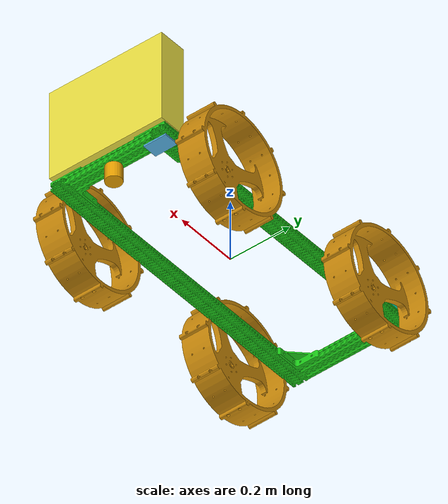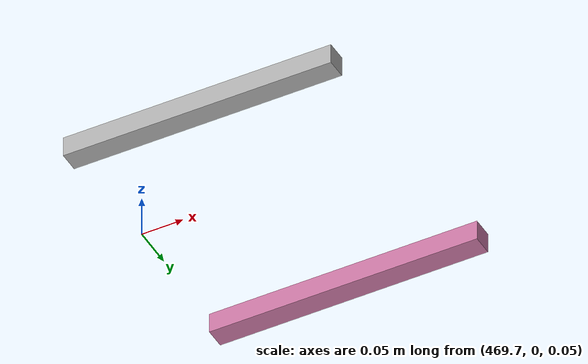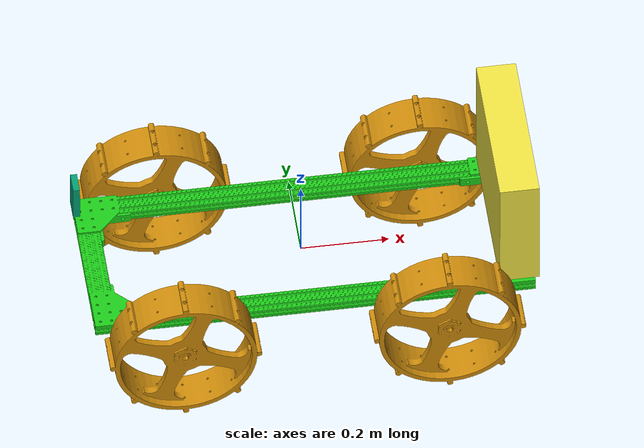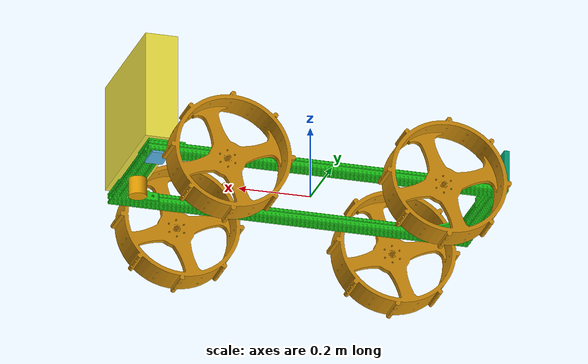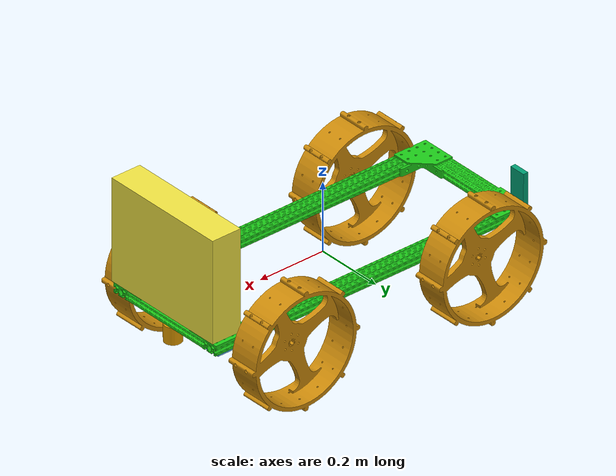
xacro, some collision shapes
<?xml version="1.0"?>
<robot xmlns:xacro="http://www.ros.org/wiki/xacro" name="moony">
<!-- note: units are meters, kilograms, and radians -->

<!-- THIS PLUGIN NEEDS TO BE FIRST -->

<!-- CONSTANTS -->
<xacro:property name="base_mass" value="4.11" />
<xacro:property name="base_height" value=".03" />

<!-- LINKS -->
    <link name="base_footprint" /> <!-- dummy prevents laser from publishing -->

    <joint name="base_joint" type="fixed">
     <origin xyz="0 0 0.01" rpy="0 0 0" />
     <parent link="base_footprint"/>
     <child link="base_link"/>
   </joint>

    <link name="base_link">
        <inertial>
            <origin rpy="0 0 0" xyz="0 0 0"/>
            <mass value="${base_mass}" />
            <inertia ixx="0.1" ixy="0" ixz="0" iyy="0.62" iyz="0" izz="0.52"/>
             <!-- values taken from solidworks  -->
        </inertial>
        <collision>
            <origin rpy="0 0 0" xyz="0 0 0"/> <!-- center of the wheel -->
            <geometry>
                <box size="1 .38 ${base_height}"/> -->
            </geometry>
        </collision>
        <visual>
            <origin rpy="0 0 0" xyz="0 0 0"/>
            <geometry>
                <mesh filename="package://moony_description/models/meshes/frame.dae"/>
            </geometry>
        </visual>
    </link>

<!-- Attach wheels -->
<xacro:include filename="$(find moony_description)/robot/Parts/wheels.xacro" />
    <xacro:individual_wheel num="1" x="1.0" y="1.0" r="-1.0"/>
    <xacro:individual_wheel num="2" x="-1.0" y="1.0" r="-1.0"/>
    <xacro:individual_wheel num="3" x="1.0" y="-1.0" r="1.0"/>
    <xacro:individual_wheel num="4" x="-1.0" y="-1.0" r="1.0"/>

<xacro:include filename="$(find moony_description)/robot/Parts/linear_actuator.xacro" />
    <xacro:linear_actuator side="left" x="-0.3" y="0.14" z="0.005"/>
    <xacro:linear_actuator side="right" x="-0.3" y="-0.19" z="0.005"/>

<!-- Attach sensors -->
 <xacro:include filename="$(find moony_description)/robot/Parts/real_lidar.urdf.xacro" />
 <xacro:include filename="$(find moony_description)/robot/Parts/real_imu.urdf.xacro" />
 <xacro:include filename="$(find moony_description)/robot/Parts/real_beacon.urdf.xacro" />
 <xacro:include filename="$(find moony_description)/robot/Parts/real_controls_box.xacro" />

<!-- Include gazebo simulation parameters -->

</robot>

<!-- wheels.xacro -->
<robot xmlns:xacro="http://www.ros.org/wiki/xacro" name="moony">

<!-- y = width/2 of frame + wheel COG to wall + buffer -->
<!-- for XACRO math - SPACES matter -->

<xacro:property name="wheel_y" value="${(.38/2)+.04+.01}" />
<xacro:property name="wheel_collision_radius" value="0.17" /> <!-- also used in skid_drive.xacro-->

<xacro:property name="wheel_mesh" value="package://moony_description/models/meshes/wheel_left.dae" />

<xacro:macro name="individual_wheel" params="num x y r">
   <link name="wheel_${num}_link">
        <inertial>
            <origin rpy="0 0 0" xyz="0 0 0"/>
            <mass value="2" />
            <inertia ixx="0.02" ixy="0" ixz="0" iyy="0.02" iyz="0" izz="0.04"/>
             <!-- values taken from solidworks; the origin is the position of the part
                w.r.t its axes for the second moment of mass values  -->
        </inertial>

        <collision>
            <origin rpy="${radians(90)} 0 0" xyz="0 0 0"/> <!-- pre joint orientation -->
            <geometry>
                <cylinder radius="${wheel_collision_radius}" length="0.09"/>
            </geometry>
        </collision>

        <visual>
            <origin rpy="0 0 0" xyz="0 0 0"/> <!-- center of the wheel -->
            <geometry>
                <mesh filename="${wheel_mesh}"/>
            </geometry>
        </visual>
    </link>

    <joint name="wheel_${num}_joint" type="continuous">
        <parent link="base_link"/>
        <child link="wheel_${num}_link"/>
        <origin xyz="${x * 0.3} ${y * wheel_y} ${-0.02 - base_height/2}" rpy="0 0 0"/> <!-- joint location -->
        <limit effort="0.1" velocity="1"/>
        <axis xyz="0 1 0"/>
    </joint>

    <transmission name="wheel_tran_${num}">
        <type>transmission_interface/SimpleTransmission</type>
        <joint name="wheel_${num}_joint">
            <hardwareInterface>hardware_interface/VelocityJointInterface</hardwareInterface>
        </joint>
        <actuator name="wheel_motor_${num}">
            <hardwareInterface>VelocityJointInterface</hardwareInterface>
            <mechanicalReduction>1</mechanicalReduction>
        </actuator>
        <!-- previous interface: VelocityJointInterface , EffortJointInterface-->
    </transmission>
</xacro:macro>

</robot>

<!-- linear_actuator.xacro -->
<robot xmlns:xacro="http://www.ros.org/wiki/xacro" name="moony">

<!-- for XACRO math - SPACES matter -->

<xacro:property name="actuator_x" value="${0.325}" />
<xacro:property name="actuator_y" value="${0.025}" />
<xacro:property name="actuator_z" value="${0.025}" />

<xacro:macro name="linear_actuator" params="side x y z">
   <link name="${side}_linear_actuator_link">
        <inertial>
            <origin rpy="0 0 0" xyz="0 0 0"/>
            <mass value="5" />
            <inertia ixx="0.02" ixy="0" ixz="0" iyy="0.02" iyz="0" izz="0.04"/>
             <!-- values taken from solidworks; the origin is the position of the part
                w.r.t its axes for the second moment of mass values  -->
        </inertial>

        <collision>
            <origin rpy="0 0 0" xyz="0 0 0"/> <!-- pre joint orientation -->
            <geometry>
                <box size="${actuator_x} ${actuator_y} ${actuator_z}"/>
            </geometry>
        </collision>

        <visual>
            <origin rpy="0 0 0" xyz="0 0 0"/> <!-- center of the wheel -->
            <geometry>
                <box size="${actuator_x} ${actuator_y} ${actuator_z}"/>
            </geometry>
        </visual>
    </link>

    <joint name="${side}_linear_actuator_joint" type="prismatic">
        <parent link="base_link"/>
        <child link="${side}_linear_actuator_link"/>
        <origin xyz="${x + actuator_x/2} ${y + actuator_y} ${z + actuator_z}" rpy="0 0 0"/> <!-- joint location -->
        <limit  effort="5.0"
                velocity="0"
                lower="40.0"
                upper="900.0"/>
        <axis xyz="1 0 0"/>
    </joint>

    <transmission name="${side}_linear_actuator_trans">
        <type>transmission_interface/SimpleTransmission</type>
        <joint name="${side}_linear_actuator_joint">
            <hardwareInterface>hardware_interface/EffortJointInterface</hardwareInterface>
        </joint>
        <actuator name="${side}_linear_actuator_motor">
            <hardwareInterface>hardware_interface/EffortJointInterface</hardwareInterface>
            <mechanicalReduction>1</mechanicalReduction>
        </actuator>
        <!-- previous interface: VelocityJointInterface , EffortJointInterface-->
    </transmission>
</xacro:macro>

</robot>

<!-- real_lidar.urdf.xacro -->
<robot xmlns:xacro="http://www.ros.org/wiki/xacro" name="moony">

 <link name="lidar_link">
    <collision>
      <origin xyz="0 0 ${.05/2}" rpy="0 0 0"/>
      <geometry>
        <cylinder radius="${0.025}" length=".05"/>
      </geometry>
    </collision>
    <visual>
      <origin xyz="0 0 0" rpy="0 0 0"/>
      <geometry>
        <mesh filename="package://moony_description/models/meshes/lidar.dae"/>
      </geometry>
    </visual>
    <inertial>
      <origin xyz="0 0 0" rpy="0 0 0"/>
      <mass value=".077"/>
      <inertia
        ixx=".00007" ixy="0.0" ixz="0.0"
        iyy=".00003" iyz="0.0"
        izz=".00008"/>
    </inertial>
  </link>

    <joint name="lidar_joint" type="fixed">
        <parent link="base_link"/>
        <child link="lidar_link"/>
        <origin xyz=".48 0 ${-0.015 - 0.005/2 -0.001}" rpy="${radians(180)} 0 ${radians(180)}"/> <!-- joint location - this may be the plane of the laser-->
    </joint>

</robot>

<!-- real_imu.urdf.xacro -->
<robot xmlns:xacro="http://www.ros.org/wiki/xacro" name="moony">

 <link name="imu_link">
    <collision>
      <origin xyz="0 0 ${.05/2}" rpy="0 0 0"/>
      <geometry>
        <box size="0.075 0.05 0.005"/>
      </geometry>
    </collision>

    <visual>
      <origin xyz="0 0 0" rpy="0 0 0"/>
      <geometry>
        <box size="0.075 0.05 0.005"/>
      </geometry>
    </visual>

    <inertial>
      <origin xyz="0 0 0" rpy="0 0 0"/>
      <mass value=".03"/> <!-- made up -->
      <inertia
        ixx=".00002" ixy="0.0" ixz="0.0"
        iyy=".00002" iyz="0.0"
        izz=".00002"/> <!-- made up -->
    </inertial>
  </link>

    <joint name="imu_joint" type="fixed">
        <parent link="base_link"/>
        <child link="imu_link"/>
        <origin xyz="0.47 0.15 -${+0.015 + 0.005/2}" rpy="0 3.141592653589793 1.5707963267948966"/> <!-- joint location -->
    </joint>
    <!-- rpy="0 3.141592653589793 1.5707963267948966" upside down, y direction in forward orientation, z down-->

</robot>

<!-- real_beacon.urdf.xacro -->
<robot xmlns:xacro="http://www.ros.org/wiki/xacro" name="moony">

<xacro:property name="z" value="${0.0938}" />
<xacro:property name="y" value="${0.0485}" />
<xacro:property name="x" value="${0.015}" />

 <link name="beacon_link">
    <collision>
      <origin xyz="0 0 0" rpy="0 0 0"/>
      <geometry>
        <box size="${x} ${y} ${z}"/>
      </geometry>
    </collision>

    <visual>
      <origin xyz="0 0 0" rpy="0 0 0"/>
      <geometry>
        <box size="${x} ${y} ${z}"/>
      </geometry>
    </visual>

    <inertial>
      <origin xyz="0 0 0" rpy="0 0 0"/>
      <mass value=".05"/> <!-- made up -->
      <inertia
        ixx=".00002" ixy="0.0" ixz="0.0"
        iyy=".00002" iyz="0.0"
        izz=".00002"/> <!-- made up -->
    </inertial>
  </link>

    <joint name="beacon_joint" type="fixed">
        <parent link="base_link"/>
        <child link="beacon_link"/>
        <origin xyz="${-0.49} ${0.165} ${z/2 +0.0125}" rpy="0 0 3.141592653589793"/> <!-- joint location -->
    </joint>

</robot>

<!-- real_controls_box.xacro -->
<robot xmlns:xacro="http://www.ros.org/wiki/xacro" name="moony">

<xacro:property name="z" value="${0.2985}" />

 <link name="controls_box">
    <collision>
      <origin xyz="0 0 ${.05/2}" rpy="0 0 0"/>
      <geometry>
        <box size="0.09 0.38 ${z}"/>
      </geometry>
    </collision>

    <visual>
      <origin xyz="0 0 0" rpy="0 0 0"/>
      <geometry>
        <box size="0.09 0.38 ${z}"/>
      </geometry>
    </visual>

    <inertial>
      <origin xyz="0 0 0" rpy="0 0 0"/>
      <mass value=".05"/> <!-- made up -->
      <inertia
        ixx=".00002" ixy="0.0" ixz="0.0"
        iyy=".00002" iyz="0.0"
        izz=".00002"/> <!-- made up -->
    </inertial>
  </link>

    <joint name="controls_joint" type="fixed">
        <parent link="base_link"/>
        <child link="controls_box"/>
        <origin xyz="0.47 0 ${z/2 + 0.025}" rpy="0 0 0"/> <!-- joint location -->
    </joint>

</robot>
